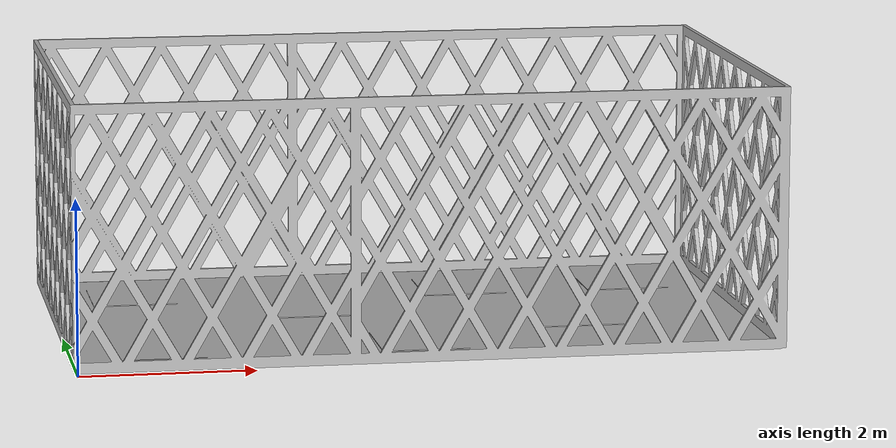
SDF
<?xml version="1.0" ?>
<sdf version="1.5">
	<model name="arena_volo">
		<static>true</static>
		<!-- Obstacles map -->
		<link name="ground">
			<pose>0 0 0.05 0 0 0</pose>
			<collision name="ground_collision">
				<geometry>
			  		<mesh>
						<uri>model://arena_volo/meshes/arena_volo.stl</uri>
			  		</mesh>
				</geometry>
			</collision>
			<visual name="ground_visual">
				<geometry>
			  		<mesh>
						<uri>model://arena_volo/meshes/arena_volo.stl</uri>
			  		</mesh>
				</geometry>
				<cast_shadows>false</cast_shadows>
			</visual>
		</link>

		<!-- Takeoff/landing pitches -->
  </model>
</sdf>
